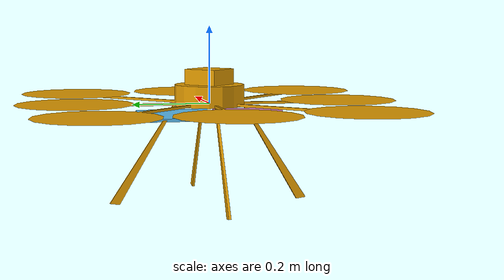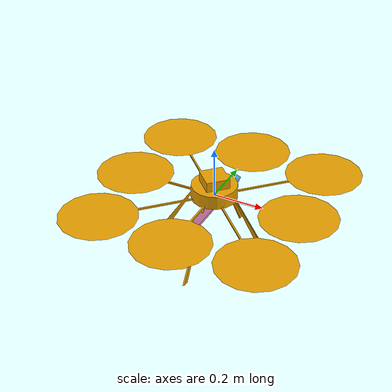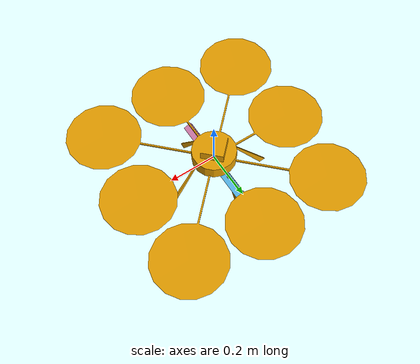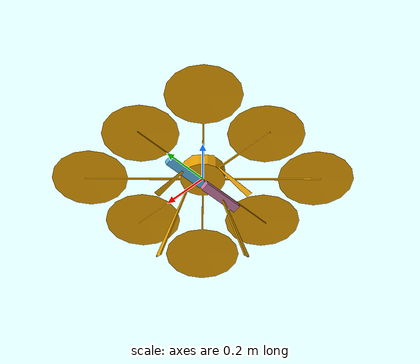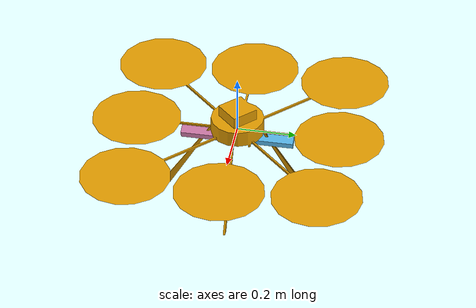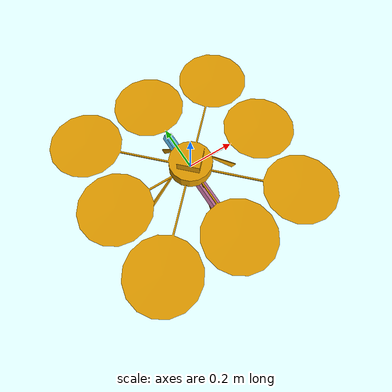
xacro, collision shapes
<?xml version="1.0"?>

<robot
  name="octorotor"
  xmlns:xacro="http://ros.org/wiki/xacro"
>

    <xacro:property name="M_PI" value="3.1415926535897931" />

    <!-- Included URDF Files -->
    <xacro:include filename="$(find swarm_stereo)/urdf/octorotor_base.urdf.xacro" />

    <!-- Instantiate quadrotor_base_macro once (has no parameters atm) -->
    <xacro:quadrotor_base_macro />

    <!-- Asus Xiton Live Pro -->
    <xacro:include filename="$(find swarm_stereo)/urdf/asus_camera.urdf.xacro" />
    <xacro:asus_camera name="camera" parent="base_link">
      <origin xyz="0.0 0.1 -0.03" rpy="0 ${M_PI/9} 0"/>
    </xacro:asus_camera>
    <xacro:asus_camera name="camera1" parent="base_link">
      <origin xyz="0.0 -0.1 -0.03" rpy="0 ${M_PI/9} 0"/>
    </xacro:asus_camera>

</robot>

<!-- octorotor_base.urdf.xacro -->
<robot xmlns:xacro="http://ros.org/wiki/xacro">

  <xacro:property name="pi" value="3.1415926535897931" />

  <!-- Main quadrotor link -->
  <xacro:macro name="quadrotor_base_macro">
    <link name="base_link">
      <inertial>
        <mass value="1.477" />
        <origin xyz="0 0 0" />
        <inertia ixx="0.01152" ixy="0.0" ixz="0.0" iyy="0.01152" iyz="0.0" izz="0.0218" />
      </inertial>

      <visual>
        <origin xyz="0 0 0" rpy="0 0 0" />
        <geometry>
          <mesh filename="package://swarm_stereo/meshes/octorotor/octorotor_base.dae"/>
        </geometry>
      </visual>

      <collision>
        <origin xyz="0 0 0" rpy="0 0 0" />
        <geometry>
          <mesh filename="package://swarm_stereo/meshes/octorotor/octorotor_base.stl"/>
        </geometry>
      </collision>
    </link>

  </xacro:macro>
</robot>

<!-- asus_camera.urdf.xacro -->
<robot xmlns:xacro="http://ros.org/wiki/xacro">
    <xacro:property name="M_PI" value="3.1415926535897931" />

    <xacro:macro name="asus_camera_model" params="name parent *origin">
      <joint name="${name}_joint" type="fixed">
        <xacro:insert_block name="origin" />
        <parent link="${parent}"/>
        <child link="${name}_link"/>
      </joint>

      <link name="${name}_link">
        <inertial>
          <mass value="0.200" />
          <origin xyz="0 0 0" rpy="0 0 0" />
          <inertia ixx="5.8083e-4" ixy="0" ixz="0" iyy="3.0833e-5" iyz="0" izz="5.9083e-4" />
        </inertial>
        <visual>
          <origin xyz="0 0 0" rpy="0 0 0" />
          <geometry>
            <mesh filename="package://hector_sensors_description/meshes/asus_camera/asus_camera_simple.dae"/>
          </geometry>
        </visual>
        <collision>
          <origin xyz="0 0 0" rpy="0 0 0" />
          <geometry>
            <box size="0.035 0.185 0.025"/>
          </geometry>
        </collision>
      </link>

      <joint name="${name}_depth_joint" type="fixed">
        <origin xyz="0.0 0.049 0.0" rpy="0 0 0" />
        <parent link="${name}_link" />
        <child link="${name}_depth_frame"/>
      </joint>

      <link name="${name}_depth_frame"/>

      <joint name="${name}_depth_optical_joint" type="fixed">
        <origin xyz="0 0 0" rpy="${-M_PI/2} 0.0 ${-M_PI/2}" />
        <parent link="${name}_depth_frame" />
        <child link="${name}_depth_optical_frame"/>
      </joint>

      <link name="${name}_depth_optical_frame"/>

      <joint name="${name}_rgb_joint" type="fixed">
        <origin xyz="0.0 0.022 0.0" rpy="0 0 0" />
        <parent link="${name}_link" />
        <child link="${name}_rgb_frame"/>
      </joint>

      <link name="${name}_rgb_frame"/>

      <joint name="${name}_rgb_optical_joint" type="fixed">
        <origin xyz="0 0 0" rpy="${-M_PI/2} 0.0 ${-M_PI/2}" />
        <parent link="${name}_rgb_frame" />
        <child link="${name}_rgb_optical_frame"/>
      </joint>

      <link name="${name}_rgb_optical_frame"/>
    </xacro:macro>

    <xacro:macro name="asus_camera" params="name parent *origin">
      <xacro:asus_camera_model name="${name}" parent="${parent}">
        <xacro:insert_block name="origin" />
      </xacro:asus_camera_model>

      <!-- ASUS Xtion PRO camera for simulation -->
      <gazebo reference="${name}_depth_frame">
        <sensor type="depth" name="${name}">
          <update_rate>20</update_rate>
          <camera>
            <horizontal_fov>${179.0 * M_PI/180.0}</horizontal_fov>
            <image>
              <format>R8G8B8</format>
              <width>640</width>
              <height>480</height>
            </image>
            <clip>
              <near>0.5</near>
              <far>9</far>
            </clip>
          </camera>
          <plugin name="${name}_camera_controller" filename="libgazebo_ros_openni_kinect.so">
            <alwaysOn>true</alwaysOn>
            <updateRate>20</updateRate>
            <imageTopicName>${name}/rgb/image_raw</imageTopicName>
            <cameraInfoTopicName>${name}/rgb/camera_info</cameraInfoTopicName>
            <depthImageTopicName>${name}/depth/image_raw</depthImageTopicName>
            <depthImageCameraInfoTopicName>${name}/depth/camera_info</depthImageCameraInfoTopicName>
            <pointCloudTopicName>${name}/depth/points</pointCloudTopicName>
            <frameName>${name}_depth_optical_frame</frameName>
            <distortion_k1>-0.02</distortion_k1>
            <distortion_k2>0.04</distortion_k2>
            <distortion_k3>-0.06</distortion_k3>
            <distortion_t1>0.0</distortion_t1>
            <distortion_t2>0.0</distortion_t2>
          </plugin>
        </sensor>
      </gazebo>
    </xacro:macro>
  </robot>
